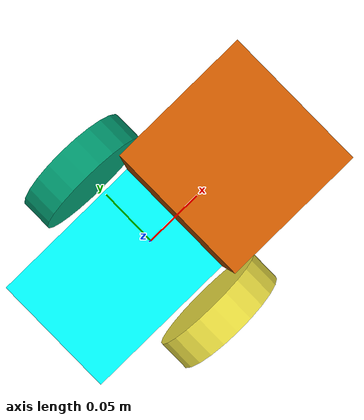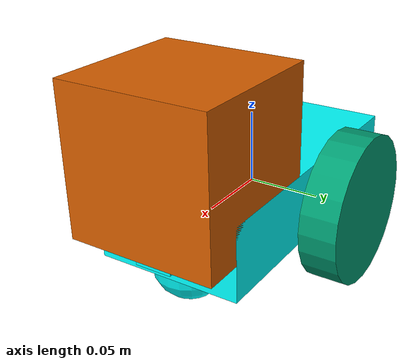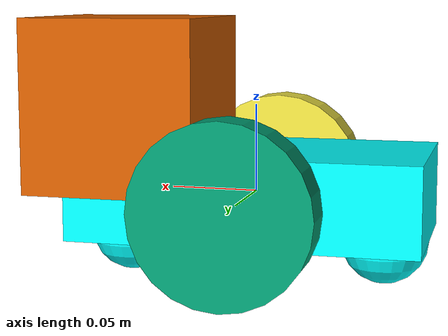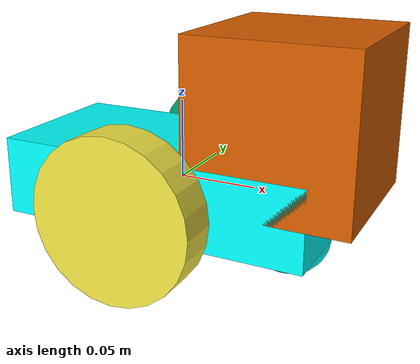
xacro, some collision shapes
<?xml version='1.0'?>

<robot name="udacity_bot" xmlns:xacro="http://www.ros.org/wiki/xacro">
  <xacro:include filename="$(find udacity_bot)/urdf/udacity_bot.gazebo" />

  <link name="robot_footprint"></link>

  <joint name="robot_footprint_joint" type="fixed">
    <origin xyz="0 0 0" rpy="0 0 0" />
    <parent link="robot_footprint"/>
    <child link="chassis" />
  </joint>

  <link name='chassis'>
    <pose>0 0 0.1 0 0 0</pose>

    <inertial>
      <mass value="15.0"/>
      <origin xyz="0.0 0 0" rpy=" 0 0 0"/>
      <inertia
          ixx="0.1" ixy="0" ixz="0"
          iyy="0.1" iyz="0"
          izz="0.1"
      />
    </inertial>

    <collision name='collision'>
      <origin xyz="0 0 0" rpy=" 0 0 0"/>
      <geometry>
        <box size=".2 .1 .05"/>
      </geometry>
    </collision>

    <visual name='chassis_visual'>
      <origin xyz="0 0 0" rpy=" 0 0 0"/>
      <geometry>
        <box size=".2 .1 .05"/>
      </geometry>
      <material name="Cyan">
        <color rgba="0 1.0 1.0 1.0"/>
      </material>
    </visual>

    <collision name='back_caster_collision'>
      <origin xyz="-0.075 0 -0.025" rpy=" 0 0 0"/>
      <geometry>
        <sphere radius="0.025"/>
      </geometry>
      <surface>
        <friction>
          <ode>
            <mu>0</mu>
            <mu2>0</mu2>
            <slip1>1.0</slip1>
            <slip2>1.0</slip2>
          </ode>
        </friction>
      </surface>
    </collision>

    <visual name='back_caster_visual'>
      <origin xyz="-0.075 0 -0.025" rpy=" 0 0 0"/>
      <geometry>
        <sphere radius="0.025"/>
      </geometry>
      <material name="Cyan">
        <color rgba="0 1.0 1.0 1.0"/>
      </material>
    </visual>

    <collision name='front_caster_collision'>
      <origin xyz="0.075 0 -0.025" rpy=" 0 0 0"/>
      <geometry>
        <sphere radius="0.025"/>
      </geometry>
      <surface>
        <friction>
          <ode>
            <mu>0</mu>
            <mu2>0</mu2>
            <slip1>1.0</slip1>
            <slip2>1.0</slip2>
          </ode>
        </friction>
      </surface>
    </collision>

    <visual name='front_caster_visual'>
      <origin xyz="0.075 0 -0.025" rpy=" 0 0 0"/>
      <geometry>
        <sphere radius="0.025"/>
      </geometry>
      <material name="Cyan">
        <color rgba="0 1.0 1.0 1.0"/>
      </material>
    </visual>

  </link>

  <link name='left_wheel'>

    <inertial>
      <mass value="5.0"/>
      <origin xyz="0 0 0" rpy="0 1.5707 1.5707"/>
      <inertia
          ixx="0.1" ixy="0" ixz="0"
          iyy="0.1" iyz="0"
          izz="0.1"
      />
    </inertial>

    <collision name='collision'>
      <origin xyz="0 0 0" rpy="0 1.5707 1.5707"/>
      <geometry>
        <cylinder radius="0.05" length="0.025"/>
      </geometry>
    </collision>

    <visual name='chassis_visual'>
      <origin xyz="0 0 0" rpy="0 1.5707 1.5707"/>
      <geometry>
        <cylinder radius="0.05" length="0.025"/>
      </geometry>
    </visual>
  </link>

  <!--joint type="continuous" name="left_wheel_hinge"-->
  <joint type="continuous" name="left_wheel_hinge">
    <origin xyz="0 0.075 0" rpy="0 0 0"/>
    <child link="left_wheel"/>
    <parent link="chassis"/>
    <axis xyz="0 1 0" rpy="0 0 0"/>
    <limit effort="10000" velocity="1000"/>
    <joint_properties damping="1.0" friction="1.0"/>
  </joint>

  <link name='right_wheel'>

    <inertial>
      <mass value="5.0"/>
      <origin xyz="0 0 0" rpy="0 1.5707 1.5707"/>
      <inertia
          ixx="0.1" ixy="0" ixz="0"
          iyy="0.1" iyz="0"
          izz="0.1"
      />
    </inertial>

    <collision name='collision'>
      <origin xyz="0 0 0" rpy="0 1.5707 1.5707"/>
      <geometry>
        <cylinder radius="0.05" length="0.025"/>
      </geometry>
    </collision>

    <visual name='chassis_visual'>
      <origin xyz="0 0 0" rpy="0 1.5707 1.5707"/>
      <geometry>
        <cylinder radius="0.05" length="0.025"/>
      </geometry>
    </visual>
  </link>

  <!--joint type="continuous" name="left_wheel_hinge"-->
  <joint type="continuous" name="right_wheel_hinge">
    <origin xyz="0 -0.075 0" rpy="0 0 0"/>
    <child link="right_wheel"/>
    <parent link="chassis"/>
    <axis xyz="0 1 0" rpy="0 0 0"/>
    <limit effort="10000" velocity="1000"/>
    <joint_properties damping="1.0" friction="1.0"/>
  </joint>

  <!-- CAMERA -->
  <link name='camera'>

    <inertial>
      <mass value="0.1"/>
      <origin xyz="0 0 0" rpy="0 0 0"/>
      <inertia
          ixx="1e-6" ixy="0" ixz="0"
          iyy="1e-6" iyz="0"
          izz="1e-6"
      />
    </inertial>

    <collision name='collision'>
      <origin xyz="0 0 0" rpy="0 0 0"/>
      <geometry>
        <box size="0.025 0.025 0.025"/>
      </geometry>
    </collision>

    <visual name='chassis_visual'>
      <origin xyz="0 0 0" rpy="0 0 0"/>
      <geometry>
        <box size="0.025 0.025 0.025"/>
      </geometry>
      <material name="Cyan">
        <color rgba="0 1.0 1.0 1.0"/>
      </material>
    </visual>
  </link>

  <!--joint type="continuous" name="left_wheel_hinge"-->
  <joint type="fixed" name="camera_joint">
    <origin xyz="0.1 0 0" rpy="0 0 0"/>
    <child link="camera"/>
    <parent link="chassis"/>
  </joint>

  <!-- hokuyo -->
  <link name='hokuyo'>

    <inertial>
      <mass value="0.1"/>
      <origin xyz="0 0 0" rpy="0 0 0"/>
      <inertia
          ixx="1e-6" ixy="0" ixz="0"
          iyy="1e-6" iyz="0"
          izz="1e-6"
      />
    </inertial>

    <collision name='collision'>
      <origin xyz="0 0 0" rpy="0 0 0"/>
      <geometry>
        <box size="0.1 0.1 0.1"/>
      </geometry>
    </collision>

    <visual name='chassis_visual'>
      <origin xyz="0 0 0" rpy="0 0 0"/>
      <geometry>
        <mesh filename="package://udacity_bot/meshes/hokuyo.dae"/>
      </geometry>
    </visual>
  </link>

  <joint type="fixed" name="hokuyo_joint">
    <origin xyz="0.075 0 0.05" rpy="0 0 0"/>
    <child link="hokuyo"/>
    <parent link="chassis"/>
  </joint>

</robot>
